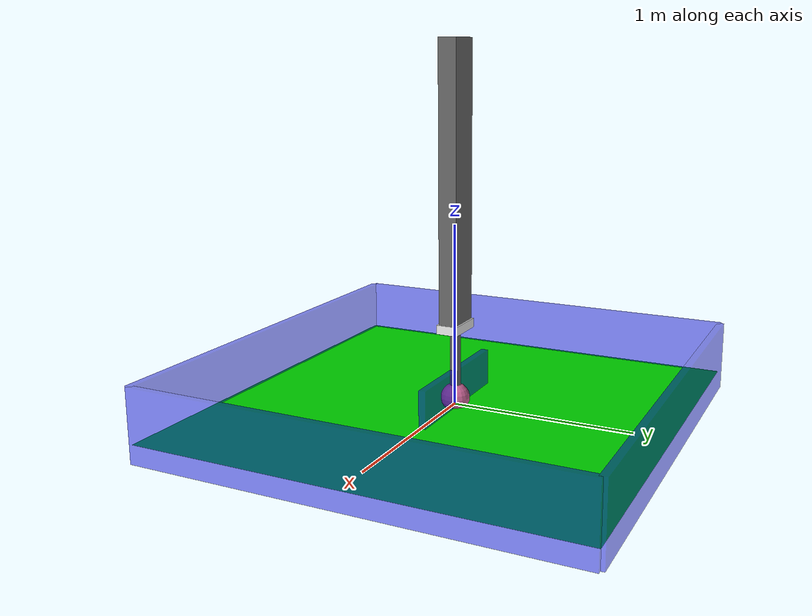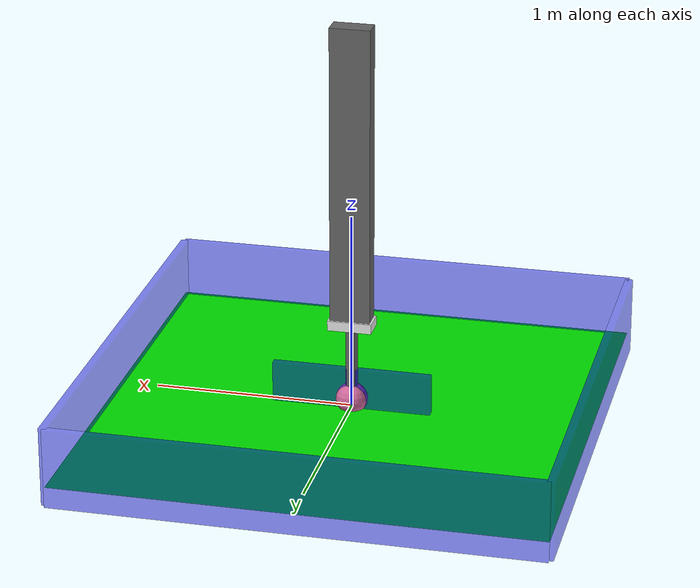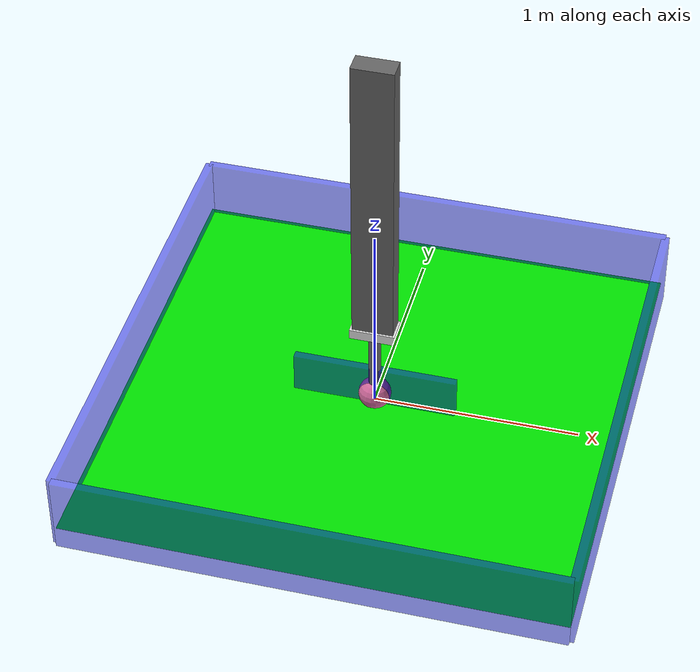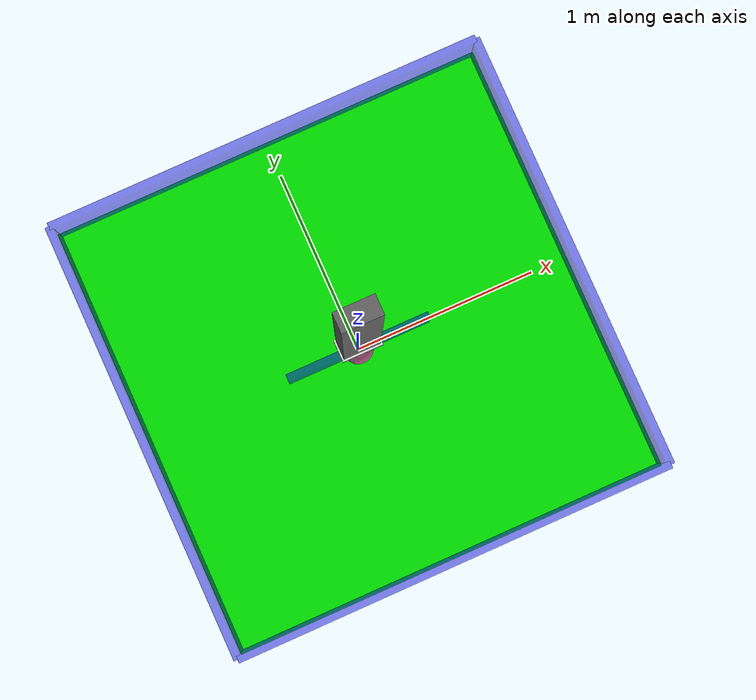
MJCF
<mujoco>
    <!-- Default settings for different tags of the model. -->
    <default>
        <joint pos="0 0 0" armature="1" limited="true" damping="1000" />
        <geom pos="0 0 0" rgba=".4 .4 .4 1" condim="3" contype="0" conaffinity="0" />
        <motor ctrlrange="-1 1" ctrllimited="true" gear="500" />
    </default>

    <compiler inertiafromgeom="true" angle="radian" />
    <option gravity="0 0 -2" timestep="0.01"/>

    <!-- Definition of all geometric shapes and joints. -->
    <worldbody>
        <!-- Diffuse lighting at position (0,0,3) pointing downwards in z direction. -->
        <light diffuse=".5 .5 .5" pos="0 0 10" dir="0 0 -1" castshadow="false" />

        <!-- Plane centered at origin with color green and size 1*1 unit^2. -->
        <geom name="table" type="plane" size="1.2 1.2 0.1" rgba="0 0.9 0 1" friction="0 0 0" contype="1" conaffinity="1" />

        <!-- Build walls around the plane. -->
        <geom type="box" size="1.2 0.02 0.2" pos="0 1.2 0.1" rgba="0 0 0.9 0.5"  contype="1" conaffinity="1" />
        <geom type="box" size="1.2 0.02 0.2" pos="0 -1.2 0.1" rgba="0 0 0.9 0.5"  contype="1" conaffinity="1" />
        <geom type="box" size="0.02 1.2 0.2" pos="1.2 0 0.1" rgba="0 0 0.9 0.5"  contype="1" conaffinity="1" />
        <geom type="box" size="0.02 1.2 0.2" pos="-1.2 0 0.1" rgba="0 0 0.9 0.5"  contype="1" conaffinity="1" />

        <!-- Build robotic arms. -->
        <body name="robot" pos="0 0 1.12">
            <joint name="cart_slide_x" type="slide" axis="1 0 0" range="-1 1" />
            <joint name="cart_slide_y" type="slide" axis="0 1 0" range="-1 1" />
            <joint name="cart_slide_z" type="slide" axis="0 0 1" range="0 0.3" />
            <joint name="cart_rotate_z" type="hinge" axis="0 0 1" range="-31.4 31.4" />

            <geom name="arm" type="box" size=".1 .05 .75" pos="0 0 0.1" />
            <geom name="wrist" type="box" size=".11 .06 .025" pos="0 0 -0.675" rgba=".9 .9 .9 1" contype="1" conaffinity="1" />

            <body name="round_hand" pos="0 0 -0.9">
                <geom name="hand" type="cylinder" size=".03 .2" density="0.002" contype="1" conaffinity="1" />
            </body>
        </body>

        <!-- Objects for the robot to push and goals for the objects. -->
        <body name="obj" pos="0 0 0.04">
            <geom type="sphere" size=".08" rgba=".8 .4 .6 1" density='0.00001' contype="1" conaffinity="1" />
            <joint name="obj_slide_z" type="slide" axis="0 0 1" range="-10 10" damping="10.0" />
            <joint name="obj_slide_x" type="slide" axis="1 0 0" range="-10 10" damping="10.0" />
            <joint name="obj_slide_y" type="slide" axis="0 1 0" range="-10 10" damping="10.0" />
        </body>

        <body name="goal1" pos="0 0 0">
            <geom type="cylinder" size="0.08 0.001" rgba="1 1 1 0" density='0.00001' contype="0" conaffinity="0" />
            <joint name="goal1_slide_x" type="slide" axis="1 0 0" range="-10 10" damping="0.5" />
            <joint name="goal1_slide_y" type="slide" axis="0 1 0" range="-10 10" damping="0.5" />
        </body>

        <body name="goal2" pos="0 0 0">
            <geom type="cylinder" size="0.08 0.001" rgba="1 1 1 0" density='0.00001' contype="0" conaffinity="0" />
            <joint name="goal2_slide_x" type="slide" axis="1 0 0" range="-10 10" damping="0.5" />
            <joint name="goal2_slide_y" type="slide" axis="0 1 0" range="-10 10" damping="0.5" />
        </body>

        <body name="goal3" pos="0 0 0">
            <geom type="cylinder" size="0.08 0.001" rgba="1 1 1 0" density='0.00001' contype="0" conaffinity="0" />
            <joint name="goal3_slide_x" type="slide" axis="1 0 0" range="-10 10" damping="0.5" />
            <joint name="goal3_slide_y" type="slide" axis="0 1 0" range="-10 10" damping="0.5" />
        </body>

        <!-- Obstacle -->
        <body name="obstacle" pos="0 0 0">
            <geom type="box" size=".01 .01 .01" pos="0 0 0" rgba="0 0 0 0" density="0.2" contype="0" conaffinity="0" />
            <joint name="obstacle_slide_x" type="slide" axis="1 0 0" range="-10 10" damping="0.5" />
            <joint name="obstacle_slide_y" type="slide" axis="0 1 0" range="-10 10" damping="0.5" />
            <body pos="0 0 0">
                <joint name="obstacle_rotate_z" type="hinge" axis="0 0 1" range="-31.4 31.4" />
                <geom type="box" size="0.4 0.02 0.2" pos="0 0 0" rgba="0 0 0.9 0.5" density="2147483647" contype="1" conaffinity="1" />
            </body>
        </body>
    </worldbody>

    <!-- Actuators that can be controlled by action vector. -->
    <actuator>
        <motor joint="cart_slide_x" />
        <motor joint="cart_slide_y" />
        <motor joint="cart_slide_z" />
        <motor joint="cart_rotate_z" gear="1000" />
    </actuator>
</mujoco>
